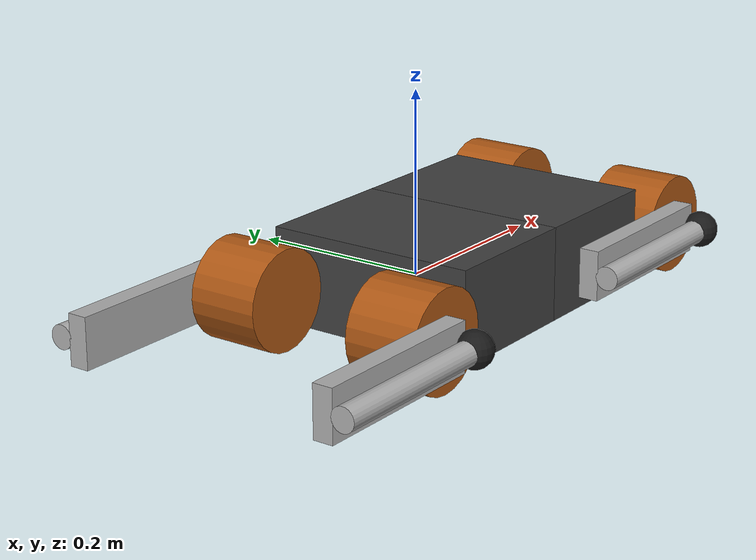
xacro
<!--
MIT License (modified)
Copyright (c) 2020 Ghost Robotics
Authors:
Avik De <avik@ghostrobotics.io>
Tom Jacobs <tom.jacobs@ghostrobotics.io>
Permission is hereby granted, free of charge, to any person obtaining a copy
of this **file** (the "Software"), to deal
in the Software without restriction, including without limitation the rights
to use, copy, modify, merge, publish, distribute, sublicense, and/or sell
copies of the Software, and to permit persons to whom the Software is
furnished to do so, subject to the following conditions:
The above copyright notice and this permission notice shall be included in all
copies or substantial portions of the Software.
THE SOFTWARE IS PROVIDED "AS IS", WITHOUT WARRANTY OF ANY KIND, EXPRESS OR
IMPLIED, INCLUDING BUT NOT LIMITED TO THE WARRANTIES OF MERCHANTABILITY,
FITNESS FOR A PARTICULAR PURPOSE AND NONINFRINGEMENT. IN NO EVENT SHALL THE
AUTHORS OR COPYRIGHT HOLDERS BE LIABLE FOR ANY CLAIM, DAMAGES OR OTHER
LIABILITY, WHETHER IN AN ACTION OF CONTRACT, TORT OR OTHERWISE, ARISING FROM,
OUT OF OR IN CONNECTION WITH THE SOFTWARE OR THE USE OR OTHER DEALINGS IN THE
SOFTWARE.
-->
<?xml version="1.0"?>

<robot xmlns:xacro="http://www.ros.org/wiki/xacro" name="spirit">

	<!-- Define parameters -->
	<!-- bodyLength + hipdx should be equal to front to back hip distance -->
	<!-- dy +  dPodAxisToEdge + upperLegWidth should be equal to the center to toe distance along y axis-->
	<xacro:property name="pi" value="3.14159265359"/>
	<xacro:property name="bodyLength" value="0.335"/>
	<xacro:property name="bodyWidth" value="0.24"/>
	<xacro:property name="bodyHeight" value="0.104"/>
	<xacro:property name="bodyMass" value="5.75"/>
	<xacro:property name="podMass" value="0.575"/>
	<xacro:property name="upperLegMass" value="0.775"/>
	<xacro:property name="upperLegIxx" value="0.00005"/> <!-- guess -->
	<xacro:property name="upperLegIyy" value="0.001"/> <!-- guess -->
	<xacro:property name="upperLegIzz" value="0.001"/> <!-- guess -->
	<xacro:property name="lowerLegMass" value="0.075"/>
	<xacro:property name="lowerLegIxx" value="0.000005"/> <!-- guess -->
	<xacro:property name="lowerLegIyy" value="0.0001"/> <!-- guess -->
	<xacro:property name="lowerLegIzz" value="0.0001"/> <!-- guess -->
	<xacro:property name="toeMass" value="0.015"/>
	<xacro:property name="upperLegLength" value="0.206"/>
	<xacro:property name="upperLegWidth" value="0.022"/>
	<xacro:property name="upperLegHeight" value="0.055"/>
	<xacro:property name="lowerLegLength" value="0.206"/>
	<xacro:property name="lowerLegRadius" value="0.013"/> <!--visual only-->
	<xacro:property name="podLength" value="0.08"/>
	<xacro:property name="podRadius" value="0.055"/>
	<xacro:property name="dPodAxisToEdge" value="0.028"/> <!--center of pod cylinder to the ab axis-->
	<xacro:property name="abOffs" value="0.10098"/>
	<xacro:property name="dx" value="0.2263"/>
	<xacro:property name="dy" value="0.07"/>
	<xacro:property name="toeRadius" value="0.02"/>
	<xacro:property name="toeOffset" value="0.0"/>
	<xacro:property name="toeStiffness" value="30000.0"/>
	<xacro:property name="toeDamping" value="1000.0"/>
	<xacro:property name="toeSpinningFriction" value="0.3"/>
	<xacro:property name="toeFriction" value="100.0"/>
	<xacro:property name="toeLateralFriction" value="50.0"/>
	<xacro:property name="abKinLimit" value="0.707"/>
	<xacro:property name="abSpeedLimit" value="30"/>
	<xacro:property name="abEffortLimit" value="40"/>
	<xacro:property name="jointSpeedLimit" value="30"/>
	<xacro:property name="jointEffortLimit" value="40"/>

	<xacro:property name="bodyColor" value="darkgray"/>
	<xacro:property name="hipColor" value="copper"/>
	<xacro:property name="upperLegColor" value="silver"/>
	<xacro:property name="lowerLegColor" value="silver"/>
	<xacro:property name="toeColor" value="black"/>

	<material name="blue">
      <color rgba="0 0 0.8 1"/>
    </material>
	<material name="black">
      <color rgba="0.1 0.1 0.1 1"/>
    </material>
	<material name="darkgray">
      <color rgba="0.25 0.25 0.25 1"/>
    </material>
	<material name="copper">
      <color rgba="0.68 0.34 0.08 1"/>
    </material>
	<material name="silver">
      <color rgba="0.68 0.68 0.68 1"/>
    </material>

	<!-- Body -->
	<link name="body">
		<visual>
			<origin rpy="0 0 0" xyz="0 0 0"/>
			<geometry>
				<box size="${bodyLength/2.0} ${bodyWidth} ${bodyHeight}"/>
			</geometry>
			<material name="${bodyColor}"/>
		</visual>

		<inertial>
			<mass value="${bodyMass/2}"/>
			<!-- Uniform box -->
			<!--Inertia is I/2 - parallel axis theorem -->
			<inertia ixx="${0.05/2}"  ixy="0"  ixz="0" iyy="${0.1/2 - bodyMass/2 * bodyLength * bodyLength/16} " iyz="0" izz="${0.1/2 - bodyMass/2 * bodyLength * bodyLength/16}" />
		</inertial>

		<!-- Just copy geometry for collision -->
		<collision>
			<origin rpy="0 0 0" xyz="0 0 0"/>
			<geometry>
				<box size="${bodyLength/2.0} ${bodyWidth/2} ${bodyHeight/2}"/>
			</geometry>
		</collision>
	</link>

	<link name="body_front">
		<visual>
			<origin rpy="0 0 0" xyz="${bodyLength/4} 0 0"/>
			<geometry>
				<box size="${bodyLength/2.0} ${bodyWidth} ${bodyHeight}"/>
			</geometry>
			<material name="${bodyColor}"/>
		</visual>

		<inertial>
			<origin rpy="0 0 0" xyz="${bodyLength/4} 0 0"/>
			<mass value="${bodyMass/2}"/>
			<!-- Uniform box -->
			<!--Inertia is I/2 - parallel axis theorem -->
			<inertia ixx="${0.05/2}"  ixy="0"  ixz="0" iyy="${0.1/2 - bodyMass/2 * bodyLength * bodyLength/16} " iyz="0" izz="${0.1/2 - bodyMass/2 * bodyLength * bodyLength/16}" />
		</inertial>

		<!-- Just copy geometry for collision -->
		<collision>
			<origin rpy="0 0 0" xyz="${bodyLength/4} 0 0"/>
			<geometry>
				<box size="${bodyLength/2} ${bodyWidth/2} ${bodyHeight/2}"/>
			</geometry>
		</collision>
	</link>

	<link name="body_middle">
		<inertial>
			<origin rpy="0 0 0" xyz="${bodyLength/4} 0 0"/>
			<mass value="0.1"/>
			<!-- Uniform box -->
			<!--Inertia is I/2 - parallel axis theorem -->
			<inertia ixx="0.0001"  ixy="0"  ixz="0" iyy="0.0001" iyz="0" izz="0.0001" />
		</inertial>

	</link>

	<joint name="sag_spine" type="revolute">
		<parent link="body"/>
		<child link="body_middle"/>
		<axis xyz="0 1 0"/>
		<origin xyz="${bodyLength/4.0/2.0} 0 0"/>
		<dynamics damping="0.0" friction="0.0"/>
	</joint>

	<!-- Transmission elements required for Gazebo -->
	<transmission name="transmission_spine">
		<type>transmission_interface/SimpleTransmission</type>
		<joint name="sag_spine">
		</joint>
		<actuator name="motor_sag_spine">
			<mechanicalReduction>1</mechanicalReduction>
		</actuator>
	</transmission>

	<joint name="cor_spine" type="revolute">
		<parent link="body_middle"/>
		<child link="body_front"/>
		<axis xyz="1 0 0"/>
		<origin xyz="${bodyLength/4.0/2.0} 0 0"/>
		<dynamics damping="0.0" friction="0.0"/>
	</joint>

	<!-- Transmission elements required for Gazebo -->
	<transmission name="transmission_spine">
		<type>transmission_interface/SimpleTransmission</type>
		<joint name="cor_spine">
		</joint>
		<actuator name="motor_cor_spine">
			<mechanicalReduction>1</mechanicalReduction>
		</actuator>
	</transmission>

	<!-- Define our leg macro -->
	<xacro:macro name="leg" params="suffix left front hipJointName kneeJointName abductionJointName hipJointLowerLimit hipJointUpperLimit color bodyFront">

		<!-- Hip motor -->
		<link name="hip${suffix}">
			<visual>
				<origin rpy="${pi/2} 0 0" xyz="${front * 0} ${left * (dPodAxisToEdge)} 0"/>
				<geometry>
					<cylinder length="${podLength}" radius="${podRadius}"/>
				</geometry>
				<material name="${hipColor}"/>
			</visual>

			<collision>
				<origin rpy="${pi/2} 0 0" xyz="0 ${left * (dPodAxisToEdge)} 0"/>
				<geometry>
					<cylinder length="${podLength}" radius="${podRadius}"/>
				</geometry>
			</collision>

			<inertial>
				<mass value="${podMass}"/>
				<inertia ixx="0.00066963541"  ixy="0"  ixz="0" iyy="0.00066963541" iyz="0" izz="0.0008696875" />
			</inertial>
		</link>

		<!-- Abduction joint. Joint names are: 8 9 10 11 -->
		<xacro:if value = "${bodyFront}">
			<joint name="joint_${abductionJointName}" type="revolute">
				<parent link="body_front"/>
				<child link="hip${suffix}"/>
				<axis xyz="1 0 0"/>
				<origin xyz="${front * dx} ${left * dy} 0"/>
				<dynamics damping="0.0" friction="0.0"/>
			</joint>
		</xacro:if>
		<xacro:unless value = "${bodyFront}">
			<joint name="joint_${abductionJointName}" type="revolute">
				<parent link="body"/>
				<child link="hip${suffix}"/>
				<axis xyz="1 0 0"/>
				<origin xyz="${front * dx + bodyLength/4} ${left * dy} 0"/>
				<dynamics damping="0.0" friction="0.0"/>
			</joint>
		</xacro:unless>

		<!-- Transmission elements required for Gazebo -->
		<transmission name="transmission_${abductionJointName}">
    		<type>transmission_interface/SimpleTransmission</type>
    		<joint name="joint_${abductionJointName}">
    		</joint>
    		<actuator name="motor_${abductionJointName}">
      			<mechanicalReduction>1</mechanicalReduction>
    		</actuator>
  		</transmission>

		<!-- Upper leg -->
		<link name="upper${suffix}">
			<visual>
				<origin rpy="0 0 0" xyz="-${upperLegLength/2} ${-left*upperLegWidth} 0"/>
				<geometry>
					<box size="${upperLegLength} ${upperLegWidth} ${upperLegHeight}"/>
				</geometry>
				<material name="${upperLegColor}"/>
			</visual>

			<collision>
				<origin rpy="0 0 0" xyz="-${upperLegLength/2} ${-left*upperLegWidth} 0"/>
				<geometry>
					<box size="${upperLegLength} ${upperLegWidth} ${upperLegHeight}"/>
				</geometry>
			</collision>

			<inertial>
				<mass value="${upperLegMass}"/>
				<inertia ixx="${upperLegIxx}"  ixy="0" ixz="0" iyy="${upperLegIyy}" iyz="0" izz="${upperLegIzz}"/>
			</inertial>
		</link>

		<!-- Hip joint. (Motor to upper leg). Joint names are: 0 2 4 6 -->
		<joint name="joint_${hipJointName}" type="revolute">
			<parent link="hip${suffix}"/>
			<child link="upper${suffix}"/>
			<axis xyz="0 -1 0"/>
			<origin xyz="${front * 0} ${left * abOffs} 0"/> <!--  rpy="0 -0.3 0" -->
			<dynamics damping="0.0" friction="0.0"/>
		</joint>

		<!-- Transmission elements required for Gazebo -->
		<transmission name="transmission_${hipJointName}">
    		<type>transmission_interface/SimpleTransmission</type>
    		<joint name="joint_${hipJointName}">
    		</joint>
    		<actuator name="motor_${hipJointName}">
      			<mechanicalReduction>1</mechanicalReduction>
    		</actuator>
  		</transmission>

		<!-- Lower leg -->
		<link name="lower${suffix}">
			<visual>
				<origin rpy="0 ${pi/2} 0" xyz="${lowerLegLength/2} 0 0"/>
				<geometry>
					<cylinder length="${lowerLegLength}" radius="${lowerLegRadius}"/>
				</geometry>
				<material name="${lowerLegColor}"/>
			</visual>

			<collision>
				<origin rpy="0 ${pi/2} 0" xyz="${lowerLegLength/2} 0 0"/>
				<geometry>
					<cylinder length="${lowerLegLength}" radius="${lowerLegRadius}"/>
				</geometry>
			</collision>

			<inertial>
				<mass value="${lowerLegMass}"/>
				<inertia ixx="${lowerLegIxx}"  ixy="0" ixz="0" iyy="${lowerLegIyy}" iyz="0" izz="${lowerLegIzz}"/>
			</inertial>
		</link>

		<!-- Knee joint. Joint names are: 1 3 5 7 -->
		<joint name="joint_${kneeJointName}" type="revolute">
			<parent link="upper${suffix}"/>
			<child link="lower${suffix}"/>
			<axis xyz="0 1 0"/>
			<origin xyz="-${upperLegLength} 0 0"/> <!--rpy="0 0.5 0"-->
			<dynamics damping="0.0" friction="0.0"/>
		</joint>

		<!-- Transmission elements required for Gazebo -->
		<transmission name="transmission_${kneeJointName}">
    		<type>transmission_interface/SimpleTransmission</type>
    		<joint name="joint_${kneeJointName}">
    		</joint>
    		<actuator name="motor_${kneeJointName}">
      			<mechanicalReduction>1.5</mechanicalReduction> <!-- Spirit knees have a 1.5 reduction from the original modules-->
    		</actuator>
  		</transmission>

		<!-- Toe -->
		<link name="toe${suffix}">
			<contact>
				<friction_anchor/>
				<stiffness value="${toeStiffness}"/>
				<damping value="${toeDamping}"/>
				<spinning_friction value="${toeSpinningFriction}"/>
				<lateral_friction value="${toeLateralFriction}"/>
			</contact>
			<visual>
				<origin rpy="0 0 0" xyz="0 0 0"/>
				<geometry>
					<sphere radius="${toeRadius}"/>
				</geometry>
				<material name="${toeColor}"/>
			</visual>

			<collision>
				<origin rpy="0 0 0" xyz="0 0 0"/>
				<geometry>
					<sphere radius="${toeRadius}"/>
				</geometry>
			</collision>

			<inertial>
				<mass value="${toeMass}"/>
				<inertia ixx="0.000025"  ixy="0"  ixz="0" iyy="0.000025" iyz="0" izz="0.000025" />
			</inertial>
		</link>

		<joint name="jtoe${suffix}" type="fixed">
			<parent link="lower${suffix}"/>
			<child link="toe${suffix}"/>
			<origin xyz="${lowerLegLength} 0 -${toeOffset}"/>
			<dynamics damping="0.0" friction="0.0"/>
		</joint>

	</xacro:macro>

	<!-- Our four legs -->
	<xacro:leg suffix="0" hipJointName="0" kneeJointName="1" abductionJointName="8" front="1" left="1" hipJointLowerLimit="${-2*pi}" hipJointUpperLimit="${2*pi}" color="darkgray" bodyFront="true"/>
 	<xacro:leg suffix="1" hipJointName="2" kneeJointName="3" abductionJointName="9" front="-1" left="1" hipJointLowerLimit="${-2*pi}" hipJointUpperLimit="${2*pi}" color="darkgray" bodyFront="false"/>
 	<xacro:leg suffix="2" hipJointName="4" kneeJointName="5" abductionJointName="10" front="1" left="-1" hipJointLowerLimit="${-2*pi}" hipJointUpperLimit="${2*pi}" color="red" bodyFront="true"/>
 	<xacro:leg suffix="3" hipJointName="6" kneeJointName="7" abductionJointName="11" front="-1" left="-1" hipJointLowerLimit="${-2*pi}" hipJointUpperLimit="${2*pi}" color="darkgray" bodyFront="false"/>

</robot>
